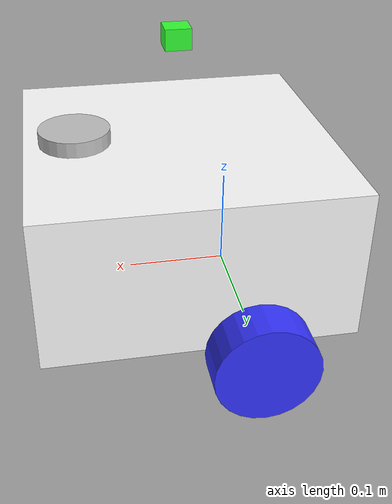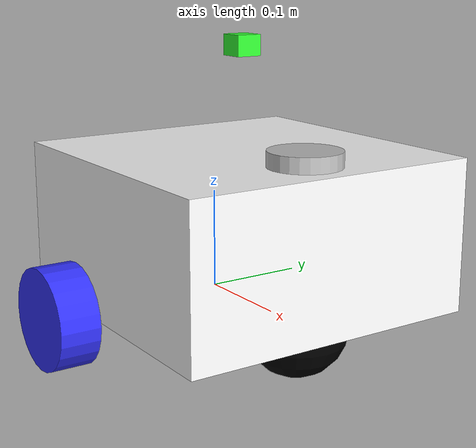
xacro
<?xml version="1.0"?>
<robot xmlns:xacro="http://www.ros.org/wiki/xacro" name="xiaor_geek_bot">

  <!-- Include inertial macros -->
  <xacro:include filename="inertial_macros.xacro"/>

  <!-- Materials -->
    <material name="black"><color rgba="0 0 0 1"/></material>
    <material name="white"><color rgba="1 1 1 1"/></material>
    <material name="silver"><color rgba="0.75 0.75 0.75 1"/></material>
    <material name="blue"><color rgba="0.2 0.2 1 1"/></material>
    <material name="green"><color rgba="0.2 1 0.2 1"/></material>
    <material name="red"><color rgba="1 0.1 0.1 1"/></material>

    <!-- BASE LINK -->

    <link name="base_link">

    </link>

    <!-- CHASSIS LINK -->

    <joint name="chassis_joint" type="fixed">
        <parent link="base_link"/>
        <child link="chassis"/>
        <origin xyz="-0.1 0 0"/>
    </joint>

    <link name="chassis">
        <visual>
            <origin xyz="0.15 0 0.075"/>
            <geometry>
                <box size="0.3 0.3 0.15"/>
            </geometry>
            <material name="white"/>
        </visual>
        <collision>
            <origin xyz="0.15 0 0.075"/>
            <geometry>
                <box size="0.3 0.3 0.15"/>
            </geometry>
        </collision>
        <xacro:inertial_box mass="0.5" x="0.3" y="0.3" z="0.15">
            <origin xyz="0.15 0 0.075" rpy="0 0 0"/>
        </xacro:inertial_box>
    </link>

    <!-- LEFT WHEEL LINK -->

    <joint name="left_wheel_joint" type="continuous">
        <parent link="base_link"/>
        <child link="left_wheel"/>
        <origin xyz="0 0.175 0" rpy="-${pi/2} 0 0" />
        <axis xyz="0 0 1"/>
    </joint>

    <link name="left_wheel">
        <visual>
            <geometry>
                <cylinder radius="0.05" length="0.04"/>
            </geometry>
            <material name="blue"/>
        </visual>
        <collision>
            <geometry>
                <cylinder radius="0.05" length="0.04"/>
            </geometry>
        </collision>
        <xacro:inertial_cylinder mass="0.1" length="0.04" radius="0.05">
            <origin xyz="0 0 0" rpy="0 0 0"/>
        </xacro:inertial_cylinder>
    </link>

    <!-- RIGHT WHEEL LINK -->

    <joint name="right_wheel_joint" type="continuous">
        <parent link="base_link"/>
        <child link="right_wheel"/>
        <origin xyz="0 -0.175 0" rpy="${pi/2} 0 0" />
        <axis xyz="0 0 -1"/>
    </joint>

    <link name="right_wheel">
        <visual>
            <geometry>
                <cylinder radius="0.05" length="0.04"/>
            </geometry>
            <material name="blue"/>
        </visual>
        <collision>
            <geometry>
                <cylinder radius="0.05" length="0.04"/>
            </geometry>
        </collision>
        <xacro:inertial_cylinder mass="0.1" length="0.04" radius="0.05">
            <origin xyz="0 0 0" rpy="0 0 0"/>
        </xacro:inertial_cylinder>
    </link>

  <!-- RPLidar -->
  <joint name="lidar_joint" type="fixed">
    <parent link="chassis"/>
    <child link="lidar"/>
    <origin xyz="0.25 0 0.15"/>
  </joint>

  <link name="lidar">
    <visual>
      <geometry>
        <cylinder radius="0.035" length="0.03"/>
      </geometry>
      <material name="silver"/>
    </visual>
    <collision>
      <geometry>
        <cylinder radius="0.035" length="0.03"/>
      </geometry>
    </collision>
    <xacro:inertial_cylinder mass="0.15" length="0.03" radius="0.035">
      <origin xyz="0.25 0 0.15"/>
    </xacro:inertial_cylinder>
  </link>

  <!-- Raspberry Pi camera -->
  <joint name="camera_joint" type="fixed">
    <parent link="chassis"/>
    <child link="camera"/>
    <origin xyz="0.15 0 0.25"/>
  </joint>

  <link name="camera">
    <visual>
      <geometry>
        <box size="0.025 0.025 0.02"/>
      </geometry>
      <material name="green"/>
    </visual>
    <xacro:inertial_box mass="0.05" x="0.025" y="0.025" z="0.02">
      <origin xyz="0.15 0 0.25"/>
    </xacro:inertial_box>
  </link>

  <!-- CASTER WHEEL NO PURPOSE ONLY FOR SIMULATION AND GEOMETRY/PHYSICS -->

  <joint name="caster_wheel_joint" type="fixed">
    <parent link="chassis"/>
    <child link="caster_wheel"/>
    <origin xyz="0.24 0 0"/>
  </joint>

  <link name="caster_wheel">
      <visual>
          <geometry>
              <sphere radius="0.05"/>
          </geometry>
          <material name="black"/>
      </visual>
      <collision>
          <geometry>
              <sphere radius="0.05"/>
          </geometry>
      </collision>
      <xacro:inertial_sphere mass="0.1" radius="0.05">
          <origin xyz="0 0 0" rpy="0 0 0"/>
      </xacro:inertial_sphere>
  </link>

</robot>

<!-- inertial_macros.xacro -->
<robot xmlns:xacro="http://www.ros.org/wiki/xacro">

    <!-- Specify some standard inertial calculations https://en.wikipedia.org/wiki/List_of_moments_of_inertia -->
    <!-- These make use of xacro's mathematical functionality -->

    <xacro:macro name="inertial_sphere" params="mass radius *origin">
        <inertial>
            <xacro:insert_block name="origin"/>
            <mass value="${mass}" />
            <inertia ixx="${(2/5) * mass * (radius*radius)}" ixy="0.0" ixz="0.0"
                    iyy="${(2/5) * mass * (radius*radius)}" iyz="0.0"
                    izz="${(2/5) * mass * (radius*radius)}" />
        </inertial>
    </xacro:macro>

    <xacro:macro name="inertial_box" params="mass x y z *origin">
        <inertial>
            <xacro:insert_block name="origin"/>
            <mass value="${mass}" />
            <inertia ixx="${(1/12) * mass * (y*y+z*z)}" ixy="0.0" ixz="0.0"
                    iyy="${(1/12) * mass * (x*x+z*z)}" iyz="0.0"
                    izz="${(1/12) * mass * (x*x+y*y)}" />
        </inertial>
    </xacro:macro>

    <xacro:macro name="inertial_cylinder" params="mass length radius *origin">
        <inertial>
            <xacro:insert_block name="origin"/>
            <mass value="${mass}" />
            <inertia ixx="${(1/12) * mass * (3*radius*radius + length*length)}" ixy="0.0" ixz="0.0"
                    iyy="${(1/12) * mass * (3*radius*radius + length*length)}" iyz="0.0"
                    izz="${(1/2) * mass * (radius*radius)}" />
        </inertial>
    </xacro:macro>

</robot>
